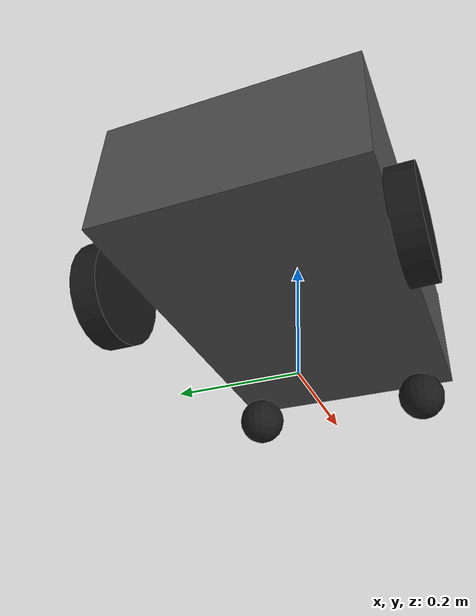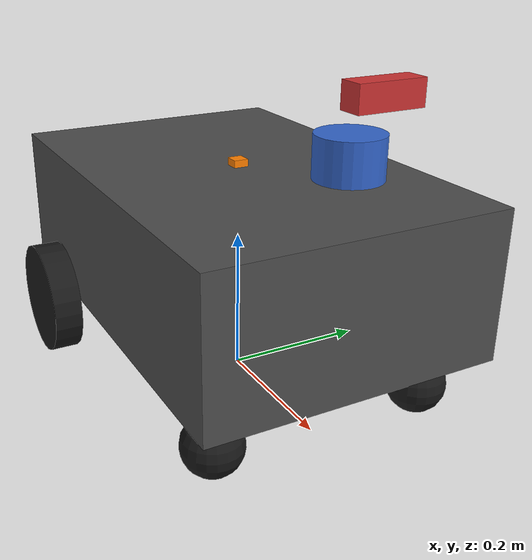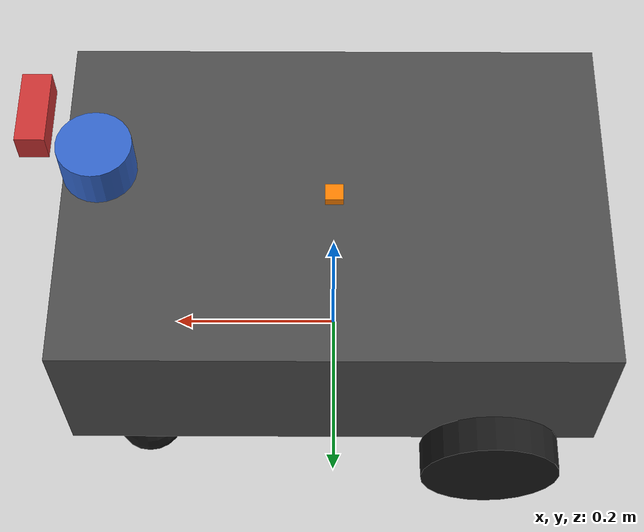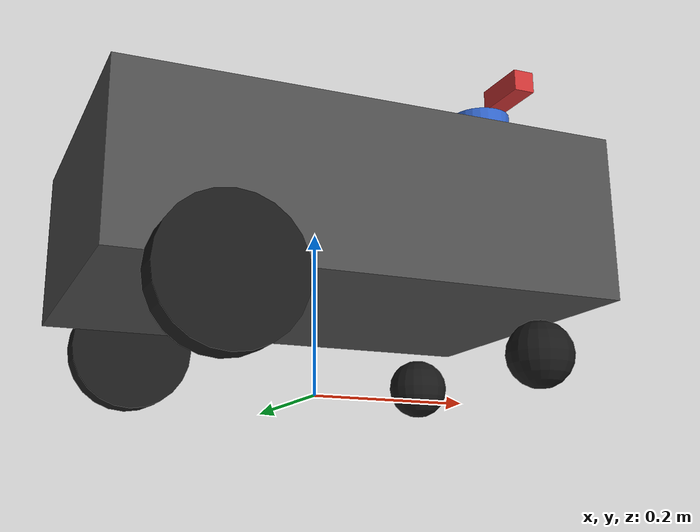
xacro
<?xml version="1.0"?>
<robot xmlns:xacro="http://www.ros.org/wiki/xacro" name="opticore_amr">

  <!-- F-1: per-robot ign 토픽/프레임 prefix. 단일로봇 = '' (무회귀). 멀티로봇 = 'amrN/'. -->
  <xacro:arg name="prefix" default=""/>

  <xacro:property name="PI" value="3.14159265359"/>
  <xacro:property name="chassis_length"  value="0.60"/>
  <xacro:property name="chassis_width"   value="0.40"/>
  <xacro:property name="chassis_height"  value="0.20"/>
  <xacro:property name="chassis_mass"    value="40.0"/>
  <xacro:property name="chassis_z_offset" value="0.10"/>
  <xacro:property name="wheel_radius"    value="0.08"/>
  <xacro:property name="wheel_width"     value="0.04"/>
  <xacro:property name="wheel_mass"      value="2.0"/>
  <xacro:property name="wheel_x_offset"  value="-0.18"/>
  <xacro:property name="wheel_y_offset"  value="0.22"/>
  <xacro:property name="caster_radius"   value="0.04"/>
  <xacro:property name="caster_mass"     value="0.5"/>
  <xacro:property name="caster_x_offset" value="0.22"/>
  <xacro:property name="caster_y_offset" value="0.15"/>
  <xacro:property name="lidar_x"  value="0.25"/>
  <xacro:property name="camera_x" value="0.30"/>

  <material name="dark_gray"><color rgba="0.3 0.3 0.3 1.0"/></material>
  <material name="black"><color rgba="0.1 0.1 0.1 1.0"/></material>
  <material name="blue"><color rgba="0.2 0.4 0.8 1.0"/></material>
  <material name="red"><color rgba="0.8 0.2 0.2 1.0"/></material>
  <material name="orange"><color rgba="1.0 0.5 0.0 1.0"/></material>

  <xacro:macro name="box_inertia" params="m x y z">
    <inertial><mass value="${m}"/>
      <inertia ixx="${(m/12.0)*(y*y+z*z)}" ixy="0" ixz="0"
               iyy="${(m/12.0)*(x*x+z*z)}" iyz="0"
               izz="${(m/12.0)*(x*x+y*y)}"/>
    </inertial>
  </xacro:macro>
  <xacro:macro name="cylinder_inertia" params="m r h">
    <inertial><mass value="${m}"/>
      <inertia ixx="${(m/12.0)*(3*r*r+h*h)}" ixy="0" ixz="0"
               iyy="${(m/12.0)*(3*r*r+h*h)}" iyz="0"
               izz="${(m/2.0)*r*r}"/>
    </inertial>
  </xacro:macro>
  <xacro:macro name="sphere_inertia" params="m r">
    <inertial><mass value="${m}"/>
      <inertia ixx="${(2.0/5.0)*m*r*r}" ixy="0" ixz="0"
               iyy="${(2.0/5.0)*m*r*r}" iyz="0"
               izz="${(2.0/5.0)*m*r*r}"/>
    </inertial>
  </xacro:macro>

  <!-- ==================== LINKS & JOINTS ==================== -->
  <link name="base_footprint"/>
  <joint name="base_footprint_joint" type="fixed">
    <parent link="base_footprint"/><child link="base_link"/>
    <origin xyz="0 0 ${chassis_z_offset + chassis_height/2.0}" rpy="0 0 0"/>
  </joint>

  <link name="base_link">
    <visual><geometry><box size="${chassis_length} ${chassis_width} ${chassis_height}"/></geometry><material name="dark_gray"/></visual>
    <collision><geometry><box size="${chassis_length} ${chassis_width} ${chassis_height}"/></geometry></collision>
    <xacro:box_inertia m="${chassis_mass}" x="${chassis_length}" y="${chassis_width}" z="${chassis_height}"/>
  </link>

  <xacro:macro name="drive_wheel" params="prefix y_sign">
    <link name="${prefix}_wheel_link">
      <visual><geometry><cylinder radius="${wheel_radius}" length="${wheel_width}"/></geometry><material name="black"/></visual>
      <collision><geometry><cylinder radius="${wheel_radius}" length="${wheel_width}"/></geometry></collision>
      <xacro:cylinder_inertia m="${wheel_mass}" r="${wheel_radius}" h="${wheel_width}"/>
    </link>
    <joint name="${prefix}_wheel_joint" type="continuous">
      <parent link="base_link"/><child link="${prefix}_wheel_link"/>
      <origin xyz="${wheel_x_offset} ${y_sign * wheel_y_offset} ${-(chassis_height/2.0 + chassis_z_offset - wheel_radius)}" rpy="${-PI/2.0} 0 0"/>
      <axis xyz="0 0 1"/>
      <dynamics damping="0.1" friction="0.1"/>
    </joint>
  </xacro:macro>
  <xacro:drive_wheel prefix="left"  y_sign="1"/>
  <xacro:drive_wheel prefix="right" y_sign="-1"/>

  <xacro:macro name="caster_wheel" params="prefix x_sign y_sign">
    <link name="${prefix}_caster_link">
      <visual><geometry><sphere radius="${caster_radius}"/></geometry><material name="black"/></visual>
      <collision><geometry><sphere radius="${caster_radius}"/></geometry></collision>
      <xacro:sphere_inertia m="${caster_mass}" r="${caster_radius}"/>
    </link>
    <joint name="${prefix}_caster_joint" type="fixed">
      <parent link="base_link"/><child link="${prefix}_caster_link"/>
      <origin xyz="${x_sign * caster_x_offset} ${y_sign * caster_y_offset} ${-(chassis_height/2.0 + chassis_z_offset - caster_radius)}" rpy="0 0 0"/>
    </joint>
  </xacro:macro>
  <xacro:caster_wheel prefix="front_left"  x_sign="1" y_sign="1"/>
  <xacro:caster_wheel prefix="front_right" x_sign="1" y_sign="-1"/>

  <link name="lidar_link">
    <visual><geometry><cylinder radius="0.04" length="0.05"/></geometry><material name="blue"/></visual>
    <collision><geometry><cylinder radius="0.04" length="0.05"/></geometry></collision>
    <xacro:cylinder_inertia m="0.3" r="0.04" h="0.05"/>
  </link>
  <joint name="lidar_joint" type="fixed">
    <parent link="base_link"/><child link="lidar_link"/>
    <origin xyz="${lidar_x} 0 ${chassis_height/2.0 + 0.075}" rpy="0 0 0"/>
  </joint>

  <link name="camera_link">
    <visual><geometry><box size="0.03 0.08 0.03"/></geometry><material name="red"/></visual>
    <collision><geometry><box size="0.03 0.08 0.03"/></geometry></collision>
    <xacro:box_inertia m="0.1" x="0.03" y="0.08" z="0.03"/>
  </link>
  <joint name="camera_joint" type="fixed">
    <parent link="base_link"/><child link="camera_link"/>
    <origin xyz="${camera_x} 0 ${chassis_height/2.0 + 0.15}" rpy="0 0 0"/>
  </joint>
  <link name="camera_optical_link"/>
  <joint name="camera_optical_joint" type="fixed">
    <parent link="camera_link"/><child link="camera_optical_link"/>
    <origin xyz="0 0 0" rpy="${-PI/2.0} 0 ${-PI/2.0}"/>
  </joint>

  <link name="imu_link">
    <visual><geometry><box size="0.02 0.02 0.01"/></geometry><material name="orange"/></visual>
    <collision><geometry><box size="0.02 0.02 0.01"/></geometry></collision>
    <xacro:box_inertia m="0.05" x="0.02" y="0.02" z="0.01"/>
  </link>
  <joint name="imu_joint" type="fixed">
    <parent link="base_link"/><child link="imu_link"/>
    <origin xyz="0 0 ${chassis_height/2.0 + 0.005}" rpy="0 0 0"/>
  </joint>

  <!--  IGNITION FORTRESS PLUGINS                                       -->
  <!--  Sensors → Ignition topics → ros_gz_bridge → ROS2 topics        -->

  <gazebo>
    <plugin filename="ignition-gazebo-diff-drive-system" name="ignition::gazebo::systems::DiffDrive">
      <left_joint>left_wheel_joint</left_joint>
      <right_joint>right_wheel_joint</right_joint>
      <wheel_separation>${2 * wheel_y_offset}</wheel_separation>
      <wheel_radius>${wheel_radius}</wheel_radius>
      <max_linear_acceleration>2.0</max_linear_acceleration>
      <odom_publish_frequency>50</odom_publish_frequency>
      <topic>$(arg prefix)cmd_vel</topic>
      <odom_topic>$(arg prefix)odom</odom_topic>
      <tf_topic>$(arg prefix)tf_gz_diff</tf_topic>
      <frame_id>$(arg prefix)odom</frame_id>
      <child_frame_id>$(arg prefix)base_footprint</child_frame_id>
    </plugin>
        <!-- Wheel slip: encoder 현실화 (창고 바닥 폴리우레탄 휠 기준) -->
    <plugin filename="ignition-gazebo-wheel-slip-system"
            name="ignition::gazebo::systems::WheelSlip">
      <wheel link_name="left_wheel_link">
        <slip_compliance_lateral>0.0</slip_compliance_lateral>
        <slip_compliance_longitudinal>0.0</slip_compliance_longitudinal>
        <wheel_normal_force>225</wheel_normal_force>
        <wheel_radius>0.08</wheel_radius>
      </wheel>
      <wheel link_name="right_wheel_link">
        <slip_compliance_lateral>0.0</slip_compliance_lateral>
        <slip_compliance_longitudinal>0.0</slip_compliance_longitudinal>
        <wheel_normal_force>225</wheel_normal_force>
        <wheel_radius>0.08</wheel_radius>
      </wheel>
    </plugin>
  </gazebo>

  <gazebo>
    <plugin filename="ignition-gazebo-joint-state-publisher-system" name="ignition::gazebo::systems::JointStatePublisher">
      <joint_name>left_wheel_joint</joint_name>
      <joint_name>right_wheel_joint</joint_name>
      <topic>$(arg prefix)joint_states</topic>
      <update_rate>50</update_rate>
    </plugin>
  </gazebo>

  <!-- GPU LiDAR (Ignition uses gpu_lidar) -->
  <gazebo reference="lidar_link">
    <sensor name="lidar_sensor" type="gpu_lidar">
      <pose>0 0 0 0 0 0</pose>
      <always_on>true</always_on>
      <update_rate>10</update_rate>
      <visualize>false</visualize>
      <topic>$(arg prefix)lidar</topic>
      <lidar>
        <scan><horizontal>
          <samples>720</samples><resolution>1</resolution>
          <min_angle>-3.14159</min_angle><max_angle>3.14159</max_angle>
        </horizontal></scan>
        <range><min>0.12</min><max>25.0</max><resolution>0.01</resolution></range>
        <noise><type>gaussian</type><mean>0.0</mean><stddev>0.03</stddev></noise>
      </lidar>
    </sensor>
  </gazebo>

  <!-- Camera -->
  <gazebo reference="camera_link">
    <sensor name="rgb_camera" type="camera">
      <always_on>true</always_on>
      <update_rate>15</update_rate>
      <visualize>false</visualize>
      <topic>$(arg prefix)camera</topic>
      <camera>
        <horizontal_fov>1.3962634</horizontal_fov>
        <image><width>640</width><height>480</height><format>R8G8B8</format></image>
        <clip><near>0.05</near><far>20.0</far></clip>
        <noise><type>gaussian</type><mean>0.0</mean><stddev>0.007</stddev></noise>
      </camera>
    </sensor>
  </gazebo>

  <!-- IMU -->
  <gazebo reference="imu_link">
    <sensor name="imu_sensor" type="imu">
      <always_on>true</always_on>
      <update_rate>100</update_rate>
      <topic>$(arg prefix)imu_raw</topic>
      <imu>
        <angular_velocity>
          <x><noise type="gaussian"><mean>0.0</mean><stddev>0.005</stddev><bias_mean>0.0001</bias_mean><bias_stddev>0.00005</bias_stddev></noise></x>
          <y><noise type="gaussian"><mean>0.0</mean><stddev>0.005</stddev><bias_mean>0.0001</bias_mean><bias_stddev>0.00005</bias_stddev></noise></y>
          <z><noise type="gaussian"><mean>0.0</mean><stddev>0.005</stddev><bias_mean>0.0001</bias_mean><bias_stddev>0.00005</bias_stddev></noise></z>
        </angular_velocity>
        <linear_acceleration>
          <x><noise type="gaussian"><mean>0.0</mean><stddev>0.1</stddev><bias_mean>0.01</bias_mean><bias_stddev>0.005</bias_stddev></noise></x>
          <y><noise type="gaussian"><mean>0.0</mean><stddev>0.1</stddev><bias_mean>0.01</bias_mean><bias_stddev>0.005</bias_stddev></noise></y>
          <z><noise type="gaussian"><mean>0.0</mean><stddev>0.1</stddev><bias_mean>0.01</bias_mean><bias_stddev>0.005</bias_stddev></noise></z>
        </linear_acceleration>
        <orientation>
          <x><noise type="gaussian"><mean>0.0</mean><stddev>0.001</stddev></noise></x>
          <y><noise type="gaussian"><mean>0.0</mean><stddev>0.001</stddev></noise></y>
          <z><noise type="gaussian"><mean>0.0</mean><stddev>0.001</stddev></noise></z>
        </orientation>
      </imu>
    </sensor>
  </gazebo>

  <!-- Friction -->
  <gazebo reference="left_wheel_link"><mu1>1.0</mu1><mu2>1.0</mu2></gazebo>
  <gazebo reference="right_wheel_link"><mu1>1.0</mu1><mu2>1.0</mu2></gazebo>
  <gazebo reference="front_left_caster_link"><mu1>0.01</mu1><mu2>0.01</mu2></gazebo>
  <gazebo reference="front_right_caster_link"><mu1>0.01</mu1><mu2>0.01</mu2></gazebo>

  <gazebo>
    <plugin filename="ignition-gazebo-odometry-publisher-system" name="ignition::gazebo::systems::OdometryPublisher">
      <odom_topic>$(arg prefix)ground_truth</odom_topic> <odom_frame>world</odom_frame>       <robot_base_frame>$(arg prefix)base_footprint</robot_base_frame>
      <publish_tf>false</publish_tf>      </plugin>
  </gazebo>

</robot>
